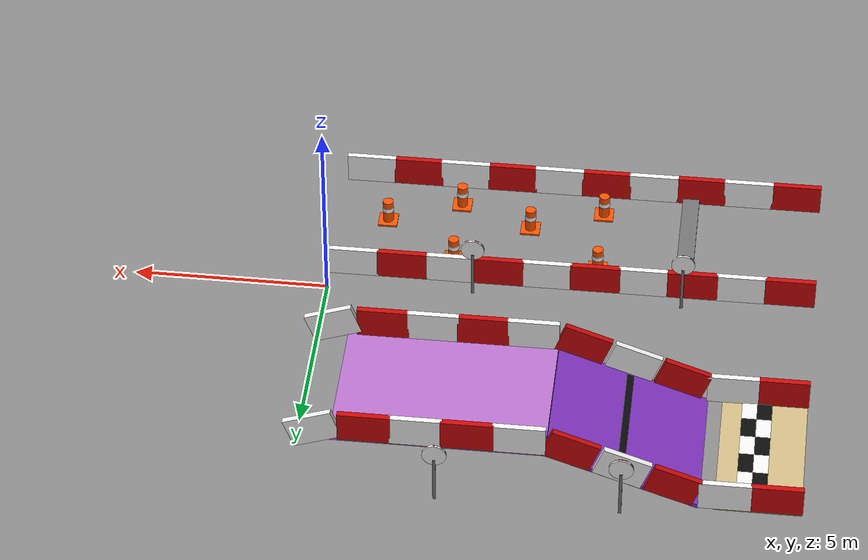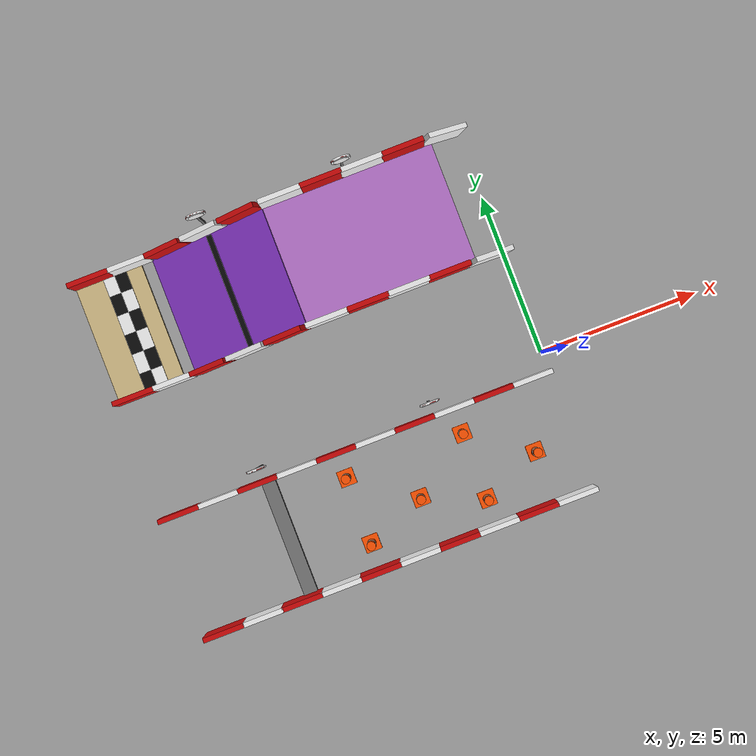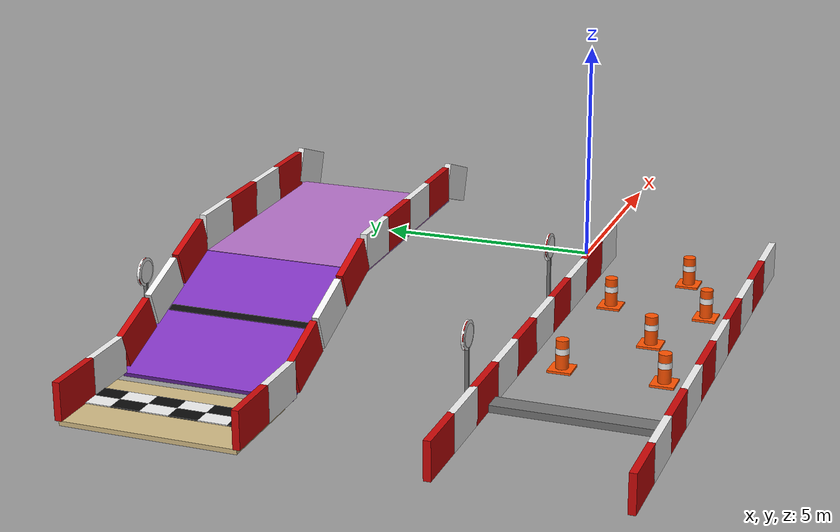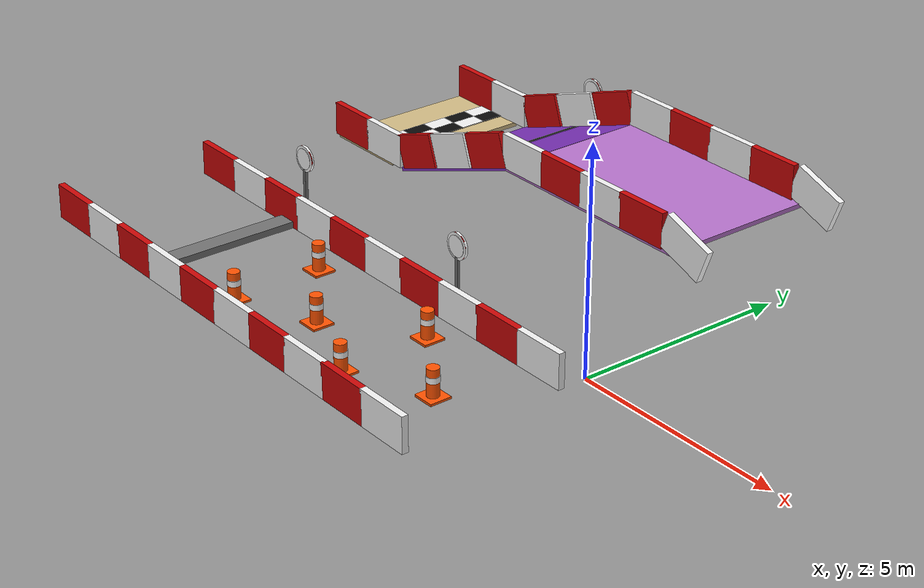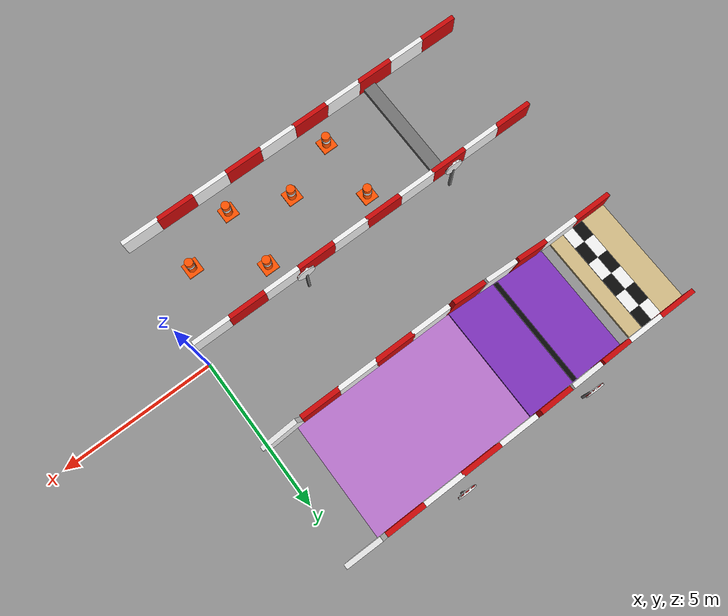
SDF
<sdf version="1.6">
 <world name="evrenos_teknofest_2026">
  <include><uri>model://sun</uri></include>
  <model name="main_course">
   <static>true</static>
   <link name="top_finish_base_0">
    <pose>-11.437500 5.000000 -0.050000 0.000000 0.000000 0.000000</pose>
    <collision name="top_finish_base_0_collision">
     <geometry><box><size>2.125000 3.750000 0.100000</size></box></geometry>
    </collision>
    <visual name="top_finish_base_0_visual">
     <geometry><box><size>2.125000 3.750000 0.100000</size></box></geometry>
     <material><ambient>0.82 0.73 0.52 1</ambient><diffuse>0.82 0.73 0.52 1</diffuse></material>
    </visual>
   </link>
   <link name="shooting_platform">
    <pose>-3.625000 5.000000 1.317200 0.000000 0.000000 0.000000</pose>
    <collision name="shooting_platform_collision">
     <geometry><box><size>5.250000 3.750000 0.100000</size></box></geometry>
    </collision>
    <visual name="shooting_platform_visual">
     <geometry><box><size>5.250000 3.750000 0.100000</size></box></geometry>
     <material><ambient>0.72 0.45 0.8 1</ambient><diffuse>0.72 0.45 0.8 1</diffuse></material>
    </visual>
   </link>
   <link name="steep_down">
    <pose>-8.125000 5.000000 0.633600 0.000000 -0.349605 0.000000</pose>
    <collision name="steep_down_collision">
     <geometry><box><size>3.991398 3.750000 0.100000</size></box></geometry>
    </collision>
    <visual name="steep_down_visual">
     <geometry><box><size>3.991398 3.750000 0.100000</size></box></geometry>
     <material><ambient>0.5 0.2 0.75 1</ambient><diffuse>0.5 0.2 0.75 1</diffuse></material>
    </visual>
   </link>
   <link name="stop_strip_down">
    <pose>-8.062500 5.000000 0.703600 0.000000 -0.349605 0.000000</pose>
    <visual name="stop_strip_down_visual">
     <geometry><box><size>0.181603 3.562500 0.030000</size></box></geometry>
     <material><ambient>0.04 0.04 0.04 1</ambient><diffuse>0.04 0.04 0.04 1</diffuse></material>
    </visual>
   </link>
   <link name="finish_0_0">
    <pose>-11.437500 3.437500 0.011000 0.000000 0.000000 0.000000</pose>
    <visual name="finish_0_0_visual">
     <geometry><box><size>0.375000 0.625000 0.022000</size></box></geometry>
     <material><ambient>0.04 0.04 0.04 1</ambient><diffuse>0.04 0.04 0.04 1</diffuse></material>
    </visual>
   </link>
   <link name="finish_1_0">
    <pose>-11.062500 3.437500 0.011000 0.000000 0.000000 0.000000</pose>
    <visual name="finish_1_0_visual">
     <geometry><box><size>0.375000 0.625000 0.022000</size></box></geometry>
     <material><ambient>0.95 0.95 0.95 1</ambient><diffuse>0.95 0.95 0.95 1</diffuse></material>
    </visual>
   </link>
   <link name="finish_0_1">
    <pose>-11.437500 4.062500 0.011000 0.000000 0.000000 0.000000</pose>
    <visual name="finish_0_1_visual">
     <geometry><box><size>0.375000 0.625000 0.022000</size></box></geometry>
     <material><ambient>0.95 0.95 0.95 1</ambient><diffuse>0.95 0.95 0.95 1</diffuse></material>
    </visual>
   </link>
   <link name="finish_1_1">
    <pose>-11.062500 4.062500 0.011000 0.000000 0.000000 0.000000</pose>
    <visual name="finish_1_1_visual">
     <geometry><box><size>0.375000 0.625000 0.022000</size></box></geometry>
     <material><ambient>0.04 0.04 0.04 1</ambient><diffuse>0.04 0.04 0.04 1</diffuse></material>
    </visual>
   </link>
   <link name="finish_0_2">
    <pose>-11.437500 4.687500 0.011000 0.000000 0.000000 0.000000</pose>
    <visual name="finish_0_2_visual">
     <geometry><box><size>0.375000 0.625000 0.022000</size></box></geometry>
     <material><ambient>0.04 0.04 0.04 1</ambient><diffuse>0.04 0.04 0.04 1</diffuse></material>
    </visual>
   </link>
   <link name="finish_1_2">
    <pose>-11.062500 4.687500 0.011000 0.000000 0.000000 0.000000</pose>
    <visual name="finish_1_2_visual">
     <geometry><box><size>0.375000 0.625000 0.022000</size></box></geometry>
     <material><ambient>0.95 0.95 0.95 1</ambient><diffuse>0.95 0.95 0.95 1</diffuse></material>
    </visual>
   </link>
   <link name="finish_0_3">
    <pose>-11.437500 5.312500 0.011000 0.000000 0.000000 0.000000</pose>
    <visual name="finish_0_3_visual">
     <geometry><box><size>0.375000 0.625000 0.022000</size></box></geometry>
     <material><ambient>0.95 0.95 0.95 1</ambient><diffuse>0.95 0.95 0.95 1</diffuse></material>
    </visual>
   </link>
   <link name="finish_1_3">
    <pose>-11.062500 5.312500 0.011000 0.000000 0.000000 0.000000</pose>
    <visual name="finish_1_3_visual">
     <geometry><box><size>0.375000 0.625000 0.022000</size></box></geometry>
     <material><ambient>0.04 0.04 0.04 1</ambient><diffuse>0.04 0.04 0.04 1</diffuse></material>
    </visual>
   </link>
   <link name="finish_0_4">
    <pose>-11.437500 5.937500 0.011000 0.000000 0.000000 0.000000</pose>
    <visual name="finish_0_4_visual">
     <geometry><box><size>0.375000 0.625000 0.022000</size></box></geometry>
     <material><ambient>0.04 0.04 0.04 1</ambient><diffuse>0.04 0.04 0.04 1</diffuse></material>
    </visual>
   </link>
   <link name="finish_1_4">
    <pose>-11.062500 5.937500 0.011000 0.000000 0.000000 0.000000</pose>
    <visual name="finish_1_4_visual">
     <geometry><box><size>0.375000 0.625000 0.022000</size></box></geometry>
     <material><ambient>0.95 0.95 0.95 1</ambient><diffuse>0.95 0.95 0.95 1</diffuse></material>
    </visual>
   </link>
   <link name="finish_0_5">
    <pose>-11.437500 6.562500 0.011000 0.000000 0.000000 0.000000</pose>
    <visual name="finish_0_5_visual">
     <geometry><box><size>0.375000 0.625000 0.022000</size></box></geometry>
     <material><ambient>0.95 0.95 0.95 1</ambient><diffuse>0.95 0.95 0.95 1</diffuse></material>
    </visual>
   </link>
   <link name="finish_1_5">
    <pose>-11.062500 6.562500 0.011000 0.000000 0.000000 0.000000</pose>
    <visual name="finish_1_5_visual">
     <geometry><box><size>0.375000 0.625000 0.022000</size></box></geometry>
     <material><ambient>0.04 0.04 0.04 1</ambient><diffuse>0.04 0.04 0.04 1</diffuse></material>
    </visual>
   </link>
   <link name="vertical_obstacle">
    <pose>-9.125000 -2.500000 0.075000 0.000000 0.000000 0.000000</pose>
    <collision name="vertical_obstacle_collision">
     <geometry><box><size>0.437500 3.750000 0.150000</size></box></geometry>
    </collision>
    <visual name="vertical_obstacle_visual">
     <geometry><box><size>0.437500 3.750000 0.150000</size></box></geometry>
     <material><ambient>0.45 0.45 0.45 1</ambient><diffuse>0.45 0.45 0.45 1</diffuse></material>
    </visual>
   </link>
   <link name="cone_base_0">
    <pose>-6.875000 -3.562500 0.025000 0.000000 0.000000 0.000000</pose>
    <collision name="cone_base_0_collision">
     <geometry><box><size>0.500000 0.500000 0.050000</size></box></geometry>
    </collision>
    <visual name="cone_base_0_visual">
     <geometry><box><size>0.500000 0.500000 0.050000</size></box></geometry>
     <material><ambient>1.0 0.32 0.0 1</ambient><diffuse>1.0 0.32 0.0 1</diffuse></material>
    </visual>
   </link>
   <link name="cone_orange_0">
    <pose>-6.875000 -3.562500 0.360000 0.000000 0.000000 0.000000</pose>
    <collision name="cone_orange_0_collision">
     <geometry><cylinder><radius>0.137500</radius><length>0.620000</length></cylinder></geometry>
    </collision>
    <visual name="cone_orange_0_visual">
     <geometry><cylinder><radius>0.137500</radius><length>0.620000</length></cylinder></geometry>
     <material><ambient>1.0 0.32 0.0 1</ambient><diffuse>1.0 0.32 0.0 1</diffuse></material>
    </visual>
   </link>
   <link name="cone_white_0">
    <pose>-6.875000 -3.562500 0.430000 0.000000 0.000000 0.000000</pose>
    <collision name="cone_white_0_collision">
     <geometry><cylinder><radius>0.143750</radius><length>0.130000</length></cylinder></geometry>
    </collision>
    <visual name="cone_white_0_visual">
     <geometry><cylinder><radius>0.143750</radius><length>0.130000</length></cylinder></geometry>
     <material><ambient>0.95 0.95 0.95 1</ambient><diffuse>0.95 0.95 0.95 1</diffuse></material>
    </visual>
   </link>
   <link name="cone_base_1">
    <pose>-6.875000 -1.437500 0.025000 0.000000 0.000000 0.000000</pose>
    <collision name="cone_base_1_collision">
     <geometry><box><size>0.500000 0.500000 0.050000</size></box></geometry>
    </collision>
    <visual name="cone_base_1_visual">
     <geometry><box><size>0.500000 0.500000 0.050000</size></box></geometry>
     <material><ambient>1.0 0.32 0.0 1</ambient><diffuse>1.0 0.32 0.0 1</diffuse></material>
    </visual>
   </link>
   <link name="cone_orange_1">
    <pose>-6.875000 -1.437500 0.360000 0.000000 0.000000 0.000000</pose>
    <collision name="cone_orange_1_collision">
     <geometry><cylinder><radius>0.137500</radius><length>0.620000</length></cylinder></geometry>
    </collision>
    <visual name="cone_orange_1_visual">
     <geometry><cylinder><radius>0.137500</radius><length>0.620000</length></cylinder></geometry>
     <material><ambient>1.0 0.32 0.0 1</ambient><diffuse>1.0 0.32 0.0 1</diffuse></material>
    </visual>
   </link>
   <link name="cone_white_1">
    <pose>-6.875000 -1.437500 0.430000 0.000000 0.000000 0.000000</pose>
    <collision name="cone_white_1_collision">
     <geometry><cylinder><radius>0.143750</radius><length>0.130000</length></cylinder></geometry>
    </collision>
    <visual name="cone_white_1_visual">
     <geometry><cylinder><radius>0.143750</radius><length>0.130000</length></cylinder></geometry>
     <material><ambient>0.95 0.95 0.95 1</ambient><diffuse>0.95 0.95 0.95 1</diffuse></material>
    </visual>
   </link>
   <link name="cone_base_2">
    <pose>-5.000000 -2.812500 0.025000 0.000000 0.000000 0.000000</pose>
    <collision name="cone_base_2_collision">
     <geometry><box><size>0.500000 0.500000 0.050000</size></box></geometry>
    </collision>
    <visual name="cone_base_2_visual">
     <geometry><box><size>0.500000 0.500000 0.050000</size></box></geometry>
     <material><ambient>1.0 0.32 0.0 1</ambient><diffuse>1.0 0.32 0.0 1</diffuse></material>
    </visual>
   </link>
   <link name="cone_orange_2">
    <pose>-5.000000 -2.812500 0.360000 0.000000 0.000000 0.000000</pose>
    <collision name="cone_orange_2_collision">
     <geometry><cylinder><radius>0.137500</radius><length>0.620000</length></cylinder></geometry>
    </collision>
    <visual name="cone_orange_2_visual">
     <geometry><cylinder><radius>0.137500</radius><length>0.620000</length></cylinder></geometry>
     <material><ambient>1.0 0.32 0.0 1</ambient><diffuse>1.0 0.32 0.0 1</diffuse></material>
    </visual>
   </link>
   <link name="cone_white_2">
    <pose>-5.000000 -2.812500 0.430000 0.000000 0.000000 0.000000</pose>
    <collision name="cone_white_2_collision">
     <geometry><cylinder><radius>0.143750</radius><length>0.130000</length></cylinder></geometry>
    </collision>
    <visual name="cone_white_2_visual">
     <geometry><cylinder><radius>0.143750</radius><length>0.130000</length></cylinder></geometry>
     <material><ambient>0.95 0.95 0.95 1</ambient><diffuse>0.95 0.95 0.95 1</diffuse></material>
    </visual>
   </link>
   <link name="cone_base_3">
    <pose>-3.125000 -3.562500 0.025000 0.000000 0.000000 0.000000</pose>
    <collision name="cone_base_3_collision">
     <geometry><box><size>0.500000 0.500000 0.050000</size></box></geometry>
    </collision>
    <visual name="cone_base_3_visual">
     <geometry><box><size>0.500000 0.500000 0.050000</size></box></geometry>
     <material><ambient>1.0 0.32 0.0 1</ambient><diffuse>1.0 0.32 0.0 1</diffuse></material>
    </visual>
   </link>
   <link name="cone_orange_3">
    <pose>-3.125000 -3.562500 0.360000 0.000000 0.000000 0.000000</pose>
    <collision name="cone_orange_3_collision">
     <geometry><cylinder><radius>0.137500</radius><length>0.620000</length></cylinder></geometry>
    </collision>
    <visual name="cone_orange_3_visual">
     <geometry><cylinder><radius>0.137500</radius><length>0.620000</length></cylinder></geometry>
     <material><ambient>1.0 0.32 0.0 1</ambient><diffuse>1.0 0.32 0.0 1</diffuse></material>
    </visual>
   </link>
   <link name="cone_white_3">
    <pose>-3.125000 -3.562500 0.430000 0.000000 0.000000 0.000000</pose>
    <collision name="cone_white_3_collision">
     <geometry><cylinder><radius>0.143750</radius><length>0.130000</length></cylinder></geometry>
    </collision>
    <visual name="cone_white_3_visual">
     <geometry><cylinder><radius>0.143750</radius><length>0.130000</length></cylinder></geometry>
     <material><ambient>0.95 0.95 0.95 1</ambient><diffuse>0.95 0.95 0.95 1</diffuse></material>
    </visual>
   </link>
   <link name="cone_base_4">
    <pose>-3.125000 -1.437500 0.025000 0.000000 0.000000 0.000000</pose>
    <collision name="cone_base_4_collision">
     <geometry><box><size>0.500000 0.500000 0.050000</size></box></geometry>
    </collision>
    <visual name="cone_base_4_visual">
     <geometry><box><size>0.500000 0.500000 0.050000</size></box></geometry>
     <material><ambient>1.0 0.32 0.0 1</ambient><diffuse>1.0 0.32 0.0 1</diffuse></material>
    </visual>
   </link>
   <link name="cone_orange_4">
    <pose>-3.125000 -1.437500 0.360000 0.000000 0.000000 0.000000</pose>
    <collision name="cone_orange_4_collision">
     <geometry><cylinder><radius>0.137500</radius><length>0.620000</length></cylinder></geometry>
    </collision>
    <visual name="cone_orange_4_visual">
     <geometry><cylinder><radius>0.137500</radius><length>0.620000</length></cylinder></geometry>
     <material><ambient>1.0 0.32 0.0 1</ambient><diffuse>1.0 0.32 0.0 1</diffuse></material>
    </visual>
   </link>
   <link name="cone_white_4">
    <pose>-3.125000 -1.437500 0.430000 0.000000 0.000000 0.000000</pose>
    <collision name="cone_white_4_collision">
     <geometry><cylinder><radius>0.143750</radius><length>0.130000</length></cylinder></geometry>
    </collision>
    <visual name="cone_white_4_visual">
     <geometry><cylinder><radius>0.143750</radius><length>0.130000</length></cylinder></geometry>
     <material><ambient>0.95 0.95 0.95 1</ambient><diffuse>0.95 0.95 0.95 1</diffuse></material>
    </visual>
   </link>
   <link name="cone_base_5">
    <pose>-1.250000 -2.750000 0.025000 0.000000 0.000000 0.000000</pose>
    <collision name="cone_base_5_collision">
     <geometry><box><size>0.500000 0.500000 0.050000</size></box></geometry>
    </collision>
    <visual name="cone_base_5_visual">
     <geometry><box><size>0.500000 0.500000 0.050000</size></box></geometry>
     <material><ambient>1.0 0.32 0.0 1</ambient><diffuse>1.0 0.32 0.0 1</diffuse></material>
    </visual>
   </link>
   <link name="cone_orange_5">
    <pose>-1.250000 -2.750000 0.360000 0.000000 0.000000 0.000000</pose>
    <collision name="cone_orange_5_collision">
     <geometry><cylinder><radius>0.137500</radius><length>0.620000</length></cylinder></geometry>
    </collision>
    <visual name="cone_orange_5_visual">
     <geometry><cylinder><radius>0.137500</radius><length>0.620000</length></cylinder></geometry>
     <material><ambient>1.0 0.32 0.0 1</ambient><diffuse>1.0 0.32 0.0 1</diffuse></material>
    </visual>
   </link>
   <link name="cone_white_5">
    <pose>-1.250000 -2.750000 0.430000 0.000000 0.000000 0.000000</pose>
    <collision name="cone_white_5_collision">
     <geometry><cylinder><radius>0.143750</radius><length>0.130000</length></cylinder></geometry>
    </collision>
    <visual name="cone_white_5_visual">
     <geometry><cylinder><radius>0.143750</radius><length>0.130000</length></cylinder></geometry>
     <material><ambient>0.95 0.95 0.95 1</ambient><diffuse>0.95 0.95 0.95 1</diffuse></material>
    </visual>
   </link>
   <link name="middle_bar_-1_0">
    <pose>-11.875000 -4.375000 0.400000 0.000000 0.000000 0.000000</pose>
    <collision name="middle_bar_-1_0_collision">
     <geometry><box><size>1.287500 0.150000 0.800000</size></box></geometry>
    </collision>
    <visual name="middle_bar_-1_0_visual">
     <geometry><box><size>1.287500 0.150000 0.800000</size></box></geometry>
     <material><ambient>0.8 0.03 0.03 1</ambient><diffuse>0.8 0.03 0.03 1</diffuse></material>
    </visual>
   </link>
   <link name="middle_bar_-1_1">
    <pose>-10.625000 -4.375000 0.400000 0.000000 0.000000 0.000000</pose>
    <collision name="middle_bar_-1_1_collision">
     <geometry><box><size>1.287500 0.150000 0.800000</size></box></geometry>
    </collision>
    <visual name="middle_bar_-1_1_visual">
     <geometry><box><size>1.287500 0.150000 0.800000</size></box></geometry>
     <material><ambient>0.95 0.95 0.95 1</ambient><diffuse>0.95 0.95 0.95 1</diffuse></material>
    </visual>
   </link>
   <link name="middle_bar_-1_2">
    <pose>-9.375000 -4.375000 0.400000 0.000000 0.000000 0.000000</pose>
    <collision name="middle_bar_-1_2_collision">
     <geometry><box><size>1.287500 0.150000 0.800000</size></box></geometry>
    </collision>
    <visual name="middle_bar_-1_2_visual">
     <geometry><box><size>1.287500 0.150000 0.800000</size></box></geometry>
     <material><ambient>0.8 0.03 0.03 1</ambient><diffuse>0.8 0.03 0.03 1</diffuse></material>
    </visual>
   </link>
   <link name="middle_bar_-1_3">
    <pose>-8.125000 -4.375000 0.400000 0.000000 0.000000 0.000000</pose>
    <collision name="middle_bar_-1_3_collision">
     <geometry><box><size>1.287500 0.150000 0.800000</size></box></geometry>
    </collision>
    <visual name="middle_bar_-1_3_visual">
     <geometry><box><size>1.287500 0.150000 0.800000</size></box></geometry>
     <material><ambient>0.95 0.95 0.95 1</ambient><diffuse>0.95 0.95 0.95 1</diffuse></material>
    </visual>
   </link>
   <link name="middle_bar_-1_4">
    <pose>-6.875000 -4.375000 0.400000 0.000000 0.000000 0.000000</pose>
    <collision name="middle_bar_-1_4_collision">
     <geometry><box><size>1.287500 0.150000 0.800000</size></box></geometry>
    </collision>
    <visual name="middle_bar_-1_4_visual">
     <geometry><box><size>1.287500 0.150000 0.800000</size></box></geometry>
     <material><ambient>0.8 0.03 0.03 1</ambient><diffuse>0.8 0.03 0.03 1</diffuse></material>
    </visual>
   </link>
   <link name="middle_bar_-1_5">
    <pose>-5.625000 -4.375000 0.400000 0.000000 0.000000 0.000000</pose>
    <collision name="middle_bar_-1_5_collision">
     <geometry><box><size>1.287500 0.150000 0.800000</size></box></geometry>
    </collision>
    <visual name="middle_bar_-1_5_visual">
     <geometry><box><size>1.287500 0.150000 0.800000</size></box></geometry>
     <material><ambient>0.95 0.95 0.95 1</ambient><diffuse>0.95 0.95 0.95 1</diffuse></material>
    </visual>
   </link>
   <link name="middle_bar_-1_6">
    <pose>-4.375000 -4.375000 0.400000 0.000000 0.000000 0.000000</pose>
    <collision name="middle_bar_-1_6_collision">
     <geometry><box><size>1.287500 0.150000 0.800000</size></box></geometry>
    </collision>
    <visual name="middle_bar_-1_6_visual">
     <geometry><box><size>1.287500 0.150000 0.800000</size></box></geometry>
     <material><ambient>0.8 0.03 0.03 1</ambient><diffuse>0.8 0.03 0.03 1</diffuse></material>
    </visual>
   </link>
   <link name="middle_bar_-1_7">
    <pose>-3.125000 -4.375000 0.400000 0.000000 0.000000 0.000000</pose>
    <collision name="middle_bar_-1_7_collision">
     <geometry><box><size>1.287500 0.150000 0.800000</size></box></geometry>
    </collision>
    <visual name="middle_bar_-1_7_visual">
     <geometry><box><size>1.287500 0.150000 0.800000</size></box></geometry>
     <material><ambient>0.95 0.95 0.95 1</ambient><diffuse>0.95 0.95 0.95 1</diffuse></material>
    </visual>
   </link>
   <link name="middle_bar_-1_8">
    <pose>-1.875000 -4.375000 0.400000 0.000000 0.000000 0.000000</pose>
    <collision name="middle_bar_-1_8_collision">
     <geometry><box><size>1.287500 0.150000 0.800000</size></box></geometry>
    </collision>
    <visual name="middle_bar_-1_8_visual">
     <geometry><box><size>1.287500 0.150000 0.800000</size></box></geometry>
     <material><ambient>0.8 0.03 0.03 1</ambient><diffuse>0.8 0.03 0.03 1</diffuse></material>
    </visual>
   </link>
   <link name="middle_bar_-1_9">
    <pose>-0.625000 -4.375000 0.400000 0.000000 0.000000 0.000000</pose>
    <collision name="middle_bar_-1_9_collision">
     <geometry><box><size>1.287500 0.150000 0.800000</size></box></geometry>
    </collision>
    <visual name="middle_bar_-1_9_visual">
     <geometry><box><size>1.287500 0.150000 0.800000</size></box></geometry>
     <material><ambient>0.95 0.95 0.95 1</ambient><diffuse>0.95 0.95 0.95 1</diffuse></material>
    </visual>
   </link>
   <link name="middle_bar_1_0">
    <pose>-11.875000 -0.625000 0.400000 0.000000 0.000000 0.000000</pose>
    <collision name="middle_bar_1_0_collision">
     <geometry><box><size>1.287500 0.150000 0.800000</size></box></geometry>
    </collision>
    <visual name="middle_bar_1_0_visual">
     <geometry><box><size>1.287500 0.150000 0.800000</size></box></geometry>
     <material><ambient>0.8 0.03 0.03 1</ambient><diffuse>0.8 0.03 0.03 1</diffuse></material>
    </visual>
   </link>
   <link name="middle_bar_1_1">
    <pose>-10.625000 -0.625000 0.400000 0.000000 0.000000 0.000000</pose>
    <collision name="middle_bar_1_1_collision">
     <geometry><box><size>1.287500 0.150000 0.800000</size></box></geometry>
    </collision>
    <visual name="middle_bar_1_1_visual">
     <geometry><box><size>1.287500 0.150000 0.800000</size></box></geometry>
     <material><ambient>0.95 0.95 0.95 1</ambient><diffuse>0.95 0.95 0.95 1</diffuse></material>
    </visual>
   </link>
   <link name="middle_bar_1_2">
    <pose>-9.375000 -0.625000 0.400000 0.000000 0.000000 0.000000</pose>
    <collision name="middle_bar_1_2_collision">
     <geometry><box><size>1.287500 0.150000 0.800000</size></box></geometry>
    </collision>
    <visual name="middle_bar_1_2_visual">
     <geometry><box><size>1.287500 0.150000 0.800000</size></box></geometry>
     <material><ambient>0.8 0.03 0.03 1</ambient><diffuse>0.8 0.03 0.03 1</diffuse></material>
    </visual>
   </link>
   <link name="middle_bar_1_3">
    <pose>-8.125000 -0.625000 0.400000 0.000000 0.000000 0.000000</pose>
    <collision name="middle_bar_1_3_collision">
     <geometry><box><size>1.287500 0.150000 0.800000</size></box></geometry>
    </collision>
    <visual name="middle_bar_1_3_visual">
     <geometry><box><size>1.287500 0.150000 0.800000</size></box></geometry>
     <material><ambient>0.95 0.95 0.95 1</ambient><diffuse>0.95 0.95 0.95 1</diffuse></material>
    </visual>
   </link>
   <link name="middle_bar_1_4">
    <pose>-6.875000 -0.625000 0.400000 0.000000 0.000000 0.000000</pose>
    <collision name="middle_bar_1_4_collision">
     <geometry><box><size>1.287500 0.150000 0.800000</size></box></geometry>
    </collision>
    <visual name="middle_bar_1_4_visual">
     <geometry><box><size>1.287500 0.150000 0.800000</size></box></geometry>
     <material><ambient>0.8 0.03 0.03 1</ambient><diffuse>0.8 0.03 0.03 1</diffuse></material>
    </visual>
   </link>
   <link name="middle_bar_1_5">
    <pose>-5.625000 -0.625000 0.400000 0.000000 0.000000 0.000000</pose>
    <collision name="middle_bar_1_5_collision">
     <geometry><box><size>1.287500 0.150000 0.800000</size></box></geometry>
    </collision>
    <visual name="middle_bar_1_5_visual">
     <geometry><box><size>1.287500 0.150000 0.800000</size></box></geometry>
     <material><ambient>0.95 0.95 0.95 1</ambient><diffuse>0.95 0.95 0.95 1</diffuse></material>
    </visual>
   </link>
   <link name="middle_bar_1_6">
    <pose>-4.375000 -0.625000 0.400000 0.000000 0.000000 0.000000</pose>
    <collision name="middle_bar_1_6_collision">
     <geometry><box><size>1.287500 0.150000 0.800000</size></box></geometry>
    </collision>
    <visual name="middle_bar_1_6_visual">
     <geometry><box><size>1.287500 0.150000 0.800000</size></box></geometry>
     <material><ambient>0.8 0.03 0.03 1</ambient><diffuse>0.8 0.03 0.03 1</diffuse></material>
    </visual>
   </link>
   <link name="middle_bar_1_7">
    <pose>-3.125000 -0.625000 0.400000 0.000000 0.000000 0.000000</pose>
    <collision name="middle_bar_1_7_collision">
     <geometry><box><size>1.287500 0.150000 0.800000</size></box></geometry>
    </collision>
    <visual name="middle_bar_1_7_visual">
     <geometry><box><size>1.287500 0.150000 0.800000</size></box></geometry>
     <material><ambient>0.95 0.95 0.95 1</ambient><diffuse>0.95 0.95 0.95 1</diffuse></material>
    </visual>
   </link>
   <link name="middle_bar_1_8">
    <pose>-1.875000 -0.625000 0.400000 0.000000 0.000000 0.000000</pose>
    <collision name="middle_bar_1_8_collision">
     <geometry><box><size>1.287500 0.150000 0.800000</size></box></geometry>
    </collision>
    <visual name="middle_bar_1_8_visual">
     <geometry><box><size>1.287500 0.150000 0.800000</size></box></geometry>
     <material><ambient>0.8 0.03 0.03 1</ambient><diffuse>0.8 0.03 0.03 1</diffuse></material>
    </visual>
   </link>
   <link name="middle_bar_1_9">
    <pose>-0.625000 -0.625000 0.400000 0.000000 0.000000 0.000000</pose>
    <collision name="middle_bar_1_9_collision">
     <geometry><box><size>1.287500 0.150000 0.800000</size></box></geometry>
    </collision>
    <visual name="middle_bar_1_9_visual">
     <geometry><box><size>1.287500 0.150000 0.800000</size></box></geometry>
     <material><ambient>0.95 0.95 0.95 1</ambient><diffuse>0.95 0.95 0.95 1</diffuse></material>
    </visual>
   </link>
   <link name="top_bar_-1_0">
    <pose>-11.875000 3.125000 0.400000 0.000000 0.000000 0.000000</pose>
    <collision name="top_bar_-1_0_collision">
     <geometry><box><size>1.287500 0.150000 0.800000</size></box></geometry>
    </collision>
    <visual name="top_bar_-1_0_visual">
     <geometry><box><size>1.287500 0.150000 0.800000</size></box></geometry>
     <material><ambient>0.8 0.03 0.03 1</ambient><diffuse>0.8 0.03 0.03 1</diffuse></material>
    </visual>
   </link>
   <link name="top_bar_-1_1">
    <pose>-10.625000 3.125000 0.400000 0.000000 0.000000 0.000000</pose>
    <collision name="top_bar_-1_1_collision">
     <geometry><box><size>1.287500 0.150000 0.800000</size></box></geometry>
    </collision>
    <visual name="top_bar_-1_1_visual">
     <geometry><box><size>1.287500 0.150000 0.800000</size></box></geometry>
     <material><ambient>0.95 0.95 0.95 1</ambient><diffuse>0.95 0.95 0.95 1</diffuse></material>
    </visual>
   </link>
   <link name="top_bar_-1_2">
    <pose>-9.375000 3.125000 0.627900 0.000000 -0.349605 0.000000</pose>
    <collision name="top_bar_-1_2_collision">
     <geometry><box><size>1.247009 0.150000 0.800000</size></box></geometry>
    </collision>
    <visual name="top_bar_-1_2_visual">
     <geometry><box><size>1.247009 0.150000 0.800000</size></box></geometry>
     <material><ambient>0.8 0.03 0.03 1</ambient><diffuse>0.8 0.03 0.03 1</diffuse></material>
    </visual>
   </link>
   <link name="top_bar_-1_3">
    <pose>-8.125000 3.125000 1.083600 0.000000 -0.349605 0.000000</pose>
    <collision name="top_bar_-1_3_collision">
     <geometry><box><size>1.247009 0.150000 0.800000</size></box></geometry>
    </collision>
    <visual name="top_bar_-1_3_visual">
     <geometry><box><size>1.247009 0.150000 0.800000</size></box></geometry>
     <material><ambient>0.95 0.95 0.95 1</ambient><diffuse>0.95 0.95 0.95 1</diffuse></material>
    </visual>
   </link>
   <link name="top_bar_-1_4">
    <pose>-6.875000 3.125000 1.539300 0.000000 -0.349605 0.000000</pose>
    <collision name="top_bar_-1_4_collision">
     <geometry><box><size>1.247009 0.150000 0.800000</size></box></geometry>
    </collision>
    <visual name="top_bar_-1_4_visual">
     <geometry><box><size>1.247009 0.150000 0.800000</size></box></geometry>
     <material><ambient>0.8 0.03 0.03 1</ambient><diffuse>0.8 0.03 0.03 1</diffuse></material>
    </visual>
   </link>
   <link name="top_bar_-1_5">
    <pose>-5.625000 3.125000 1.767200 0.000000 0.000000 0.000000</pose>
    <collision name="top_bar_-1_5_collision">
     <geometry><box><size>1.287500 0.150000 0.800000</size></box></geometry>
    </collision>
    <visual name="top_bar_-1_5_visual">
     <geometry><box><size>1.287500 0.150000 0.800000</size></box></geometry>
     <material><ambient>0.95 0.95 0.95 1</ambient><diffuse>0.95 0.95 0.95 1</diffuse></material>
    </visual>
   </link>
   <link name="top_bar_-1_6">
    <pose>-4.375000 3.125000 1.767200 0.000000 0.000000 0.000000</pose>
    <collision name="top_bar_-1_6_collision">
     <geometry><box><size>1.287500 0.150000 0.800000</size></box></geometry>
    </collision>
    <visual name="top_bar_-1_6_visual">
     <geometry><box><size>1.287500 0.150000 0.800000</size></box></geometry>
     <material><ambient>0.8 0.03 0.03 1</ambient><diffuse>0.8 0.03 0.03 1</diffuse></material>
    </visual>
   </link>
   <link name="top_bar_-1_7">
    <pose>-3.125000 3.125000 1.767200 0.000000 0.000000 0.000000</pose>
    <collision name="top_bar_-1_7_collision">
     <geometry><box><size>1.287500 0.150000 0.800000</size></box></geometry>
    </collision>
    <visual name="top_bar_-1_7_visual">
     <geometry><box><size>1.287500 0.150000 0.800000</size></box></geometry>
     <material><ambient>0.95 0.95 0.95 1</ambient><diffuse>0.95 0.95 0.95 1</diffuse></material>
    </visual>
   </link>
   <link name="top_bar_-1_8">
    <pose>-1.875000 3.125000 1.767200 0.000000 0.000000 0.000000</pose>
    <collision name="top_bar_-1_8_collision">
     <geometry><box><size>1.287500 0.150000 0.800000</size></box></geometry>
    </collision>
    <visual name="top_bar_-1_8_visual">
     <geometry><box><size>1.287500 0.150000 0.800000</size></box></geometry>
     <material><ambient>0.8 0.03 0.03 1</ambient><diffuse>0.8 0.03 0.03 1</diffuse></material>
    </visual>
   </link>
   <link name="top_bar_-1_9">
    <pose>-0.625000 3.125000 1.630500 0.000000 0.349605 0.000000</pose>
    <collision name="top_bar_-1_9_collision">
     <geometry><box><size>1.247009 0.150000 0.800000</size></box></geometry>
    </collision>
    <visual name="top_bar_-1_9_visual">
     <geometry><box><size>1.247009 0.150000 0.800000</size></box></geometry>
     <material><ambient>0.95 0.95 0.95 1</ambient><diffuse>0.95 0.95 0.95 1</diffuse></material>
    </visual>
   </link>
   <link name="top_bar_1_0">
    <pose>-11.875000 6.875000 0.400000 0.000000 0.000000 0.000000</pose>
    <collision name="top_bar_1_0_collision">
     <geometry><box><size>1.287500 0.150000 0.800000</size></box></geometry>
    </collision>
    <visual name="top_bar_1_0_visual">
     <geometry><box><size>1.287500 0.150000 0.800000</size></box></geometry>
     <material><ambient>0.8 0.03 0.03 1</ambient><diffuse>0.8 0.03 0.03 1</diffuse></material>
    </visual>
   </link>
   <link name="top_bar_1_1">
    <pose>-10.625000 6.875000 0.400000 0.000000 0.000000 0.000000</pose>
    <collision name="top_bar_1_1_collision">
     <geometry><box><size>1.287500 0.150000 0.800000</size></box></geometry>
    </collision>
    <visual name="top_bar_1_1_visual">
     <geometry><box><size>1.287500 0.150000 0.800000</size></box></geometry>
     <material><ambient>0.95 0.95 0.95 1</ambient><diffuse>0.95 0.95 0.95 1</diffuse></material>
    </visual>
   </link>
   <link name="top_bar_1_2">
    <pose>-9.375000 6.875000 0.627900 0.000000 -0.349605 0.000000</pose>
    <collision name="top_bar_1_2_collision">
     <geometry><box><size>1.247009 0.150000 0.800000</size></box></geometry>
    </collision>
    <visual name="top_bar_1_2_visual">
     <geometry><box><size>1.247009 0.150000 0.800000</size></box></geometry>
     <material><ambient>0.8 0.03 0.03 1</ambient><diffuse>0.8 0.03 0.03 1</diffuse></material>
    </visual>
   </link>
   <link name="top_bar_1_3">
    <pose>-8.125000 6.875000 1.083600 0.000000 -0.349605 0.000000</pose>
    <collision name="top_bar_1_3_collision">
     <geometry><box><size>1.247009 0.150000 0.800000</size></box></geometry>
    </collision>
    <visual name="top_bar_1_3_visual">
     <geometry><box><size>1.247009 0.150000 0.800000</size></box></geometry>
     <material><ambient>0.95 0.95 0.95 1</ambient><diffuse>0.95 0.95 0.95 1</diffuse></material>
    </visual>
   </link>
   <link name="top_bar_1_4">
    <pose>-6.875000 6.875000 1.539300 0.000000 -0.349605 0.000000</pose>
    <collision name="top_bar_1_4_collision">
     <geometry><box><size>1.247009 0.150000 0.800000</size></box></geometry>
    </collision>
    <visual name="top_bar_1_4_visual">
     <geometry><box><size>1.247009 0.150000 0.800000</size></box></geometry>
     <material><ambient>0.8 0.03 0.03 1</ambient><diffuse>0.8 0.03 0.03 1</diffuse></material>
    </visual>
   </link>
   <link name="top_bar_1_5">
    <pose>-5.625000 6.875000 1.767200 0.000000 0.000000 0.000000</pose>
    <collision name="top_bar_1_5_collision">
     <geometry><box><size>1.287500 0.150000 0.800000</size></box></geometry>
    </collision>
    <visual name="top_bar_1_5_visual">
     <geometry><box><size>1.287500 0.150000 0.800000</size></box></geometry>
     <material><ambient>0.95 0.95 0.95 1</ambient><diffuse>0.95 0.95 0.95 1</diffuse></material>
    </visual>
   </link>
   <link name="top_bar_1_6">
    <pose>-4.375000 6.875000 1.767200 0.000000 0.000000 0.000000</pose>
    <collision name="top_bar_1_6_collision">
     <geometry><box><size>1.287500 0.150000 0.800000</size></box></geometry>
    </collision>
    <visual name="top_bar_1_6_visual">
     <geometry><box><size>1.287500 0.150000 0.800000</size></box></geometry>
     <material><ambient>0.8 0.03 0.03 1</ambient><diffuse>0.8 0.03 0.03 1</diffuse></material>
    </visual>
   </link>
   <link name="top_bar_1_7">
    <pose>-3.125000 6.875000 1.767200 0.000000 0.000000 0.000000</pose>
    <collision name="top_bar_1_7_collision">
     <geometry><box><size>1.287500 0.150000 0.800000</size></box></geometry>
    </collision>
    <visual name="top_bar_1_7_visual">
     <geometry><box><size>1.287500 0.150000 0.800000</size></box></geometry>
     <material><ambient>0.95 0.95 0.95 1</ambient><diffuse>0.95 0.95 0.95 1</diffuse></material>
    </visual>
   </link>
   <link name="top_bar_1_8">
    <pose>-1.875000 6.875000 1.767200 0.000000 0.000000 0.000000</pose>
    <collision name="top_bar_1_8_collision">
     <geometry><box><size>1.287500 0.150000 0.800000</size></box></geometry>
    </collision>
    <visual name="top_bar_1_8_visual">
     <geometry><box><size>1.287500 0.150000 0.800000</size></box></geometry>
     <material><ambient>0.8 0.03 0.03 1</ambient><diffuse>0.8 0.03 0.03 1</diffuse></material>
    </visual>
   </link>
   <link name="top_bar_1_9">
    <pose>-0.625000 6.875000 1.630500 0.000000 0.349605 0.000000</pose>
    <collision name="top_bar_1_9_collision">
     <geometry><box><size>1.247009 0.150000 0.800000</size></box></geometry>
    </collision>
    <visual name="top_bar_1_9_visual">
     <geometry><box><size>1.247009 0.150000 0.800000</size></box></geometry>
     <material><ambient>0.95 0.95 0.95 1</ambient><diffuse>0.95 0.95 0.95 1</diffuse></material>
    </visual>
   </link>
   <link name="stage4_post">
    <pose>-9.125000 -0.187500 0.650000 0.000000 0.000000 0.000000</pose>
    <collision name="stage4_post_collision">
     <geometry><box><size>0.075000 0.075000 1.300000</size></box></geometry>
    </collision>
    <visual name="stage4_post_visual">
     <geometry><box><size>0.075000 0.075000 1.300000</size></box></geometry>
     <material><ambient>0.45 0.45 0.45 1</ambient><diffuse>0.45 0.45 0.45 1</diffuse></material>
    </visual>
   </link>
   <link name="stage4_disc">
    <pose>-9.125000 -0.187500 1.450000 1.570796 0.000000 0.000000</pose>
    <visual name="stage4_disc_visual">
     <geometry><cylinder><radius>0.300000</radius><length>0.062500</length></cylinder></geometry>
     <material><ambient>0.95 0.95 0.95 1</ambient><diffuse>0.95 0.95 0.95 1</diffuse></material>
    </visual>
   </link>
   <link name="stage4_redring">
    <pose>-9.125000 -0.202500 1.450000 1.570796 0.000000 0.000000</pose>
    <visual name="stage4_redring_visual">
     <geometry><cylinder><radius>0.300000</radius><length>0.022500</length></cylinder></geometry>
     <material><ambient>0.8 0.03 0.03 1</ambient><diffuse>0.8 0.03 0.03 1</diffuse></material>
    </visual>
   </link>
   <link name="stage4_inner">
    <pose>-9.125000 -0.217500 1.450000 1.570796 0.000000 0.000000</pose>
    <visual name="stage4_inner_visual">
     <geometry><cylinder><radius>0.240000</radius><length>0.025000</length></cylinder></geometry>
     <material><ambient>0.95 0.95 0.95 1</ambient><diffuse>0.95 0.95 0.95 1</diffuse></material>
    </visual>
   </link>
   <link name="stage5_post">
    <pose>-3.750000 -0.187500 0.650000 0.000000 0.000000 0.000000</pose>
    <collision name="stage5_post_collision">
     <geometry><box><size>0.075000 0.075000 1.300000</size></box></geometry>
    </collision>
    <visual name="stage5_post_visual">
     <geometry><box><size>0.075000 0.075000 1.300000</size></box></geometry>
     <material><ambient>0.45 0.45 0.45 1</ambient><diffuse>0.45 0.45 0.45 1</diffuse></material>
    </visual>
   </link>
   <link name="stage5_disc">
    <pose>-3.750000 -0.187500 1.450000 1.570796 0.000000 0.000000</pose>
    <visual name="stage5_disc_visual">
     <geometry><cylinder><radius>0.300000</radius><length>0.062500</length></cylinder></geometry>
     <material><ambient>0.95 0.95 0.95 1</ambient><diffuse>0.95 0.95 0.95 1</diffuse></material>
    </visual>
   </link>
   <link name="stage5_redring">
    <pose>-3.750000 -0.202500 1.450000 1.570796 0.000000 0.000000</pose>
    <visual name="stage5_redring_visual">
     <geometry><cylinder><radius>0.300000</radius><length>0.022500</length></cylinder></geometry>
     <material><ambient>0.8 0.03 0.03 1</ambient><diffuse>0.8 0.03 0.03 1</diffuse></material>
    </visual>
   </link>
   <link name="stage5_inner">
    <pose>-3.750000 -0.217500 1.450000 1.570796 0.000000 0.000000</pose>
    <visual name="stage5_inner_visual">
     <geometry><cylinder><radius>0.240000</radius><length>0.025000</length></cylinder></geometry>
     <material><ambient>0.95 0.95 0.95 1</ambient><diffuse>0.95 0.95 0.95 1</diffuse></material>
    </visual>
   </link>
   <link name="stage9_post">
    <pose>-3.625000 7.312500 0.650000 0.000000 0.000000 0.000000</pose>
    <collision name="stage9_post_collision">
     <geometry><box><size>0.075000 0.075000 1.300000</size></box></geometry>
    </collision>
    <visual name="stage9_post_visual">
     <geometry><box><size>0.075000 0.075000 1.300000</size></box></geometry>
     <material><ambient>0.45 0.45 0.45 1</ambient><diffuse>0.45 0.45 0.45 1</diffuse></material>
    </visual>
   </link>
   <link name="stage9_disc">
    <pose>-3.625000 7.312500 1.450000 1.570796 0.000000 0.000000</pose>
    <visual name="stage9_disc_visual">
     <geometry><cylinder><radius>0.300000</radius><length>0.062500</length></cylinder></geometry>
     <material><ambient>0.95 0.95 0.95 1</ambient><diffuse>0.95 0.95 0.95 1</diffuse></material>
    </visual>
   </link>
   <link name="stage9_redring">
    <pose>-3.625000 7.297500 1.450000 1.570796 0.000000 0.000000</pose>
    <visual name="stage9_redring_visual">
     <geometry><cylinder><radius>0.300000</radius><length>0.022500</length></cylinder></geometry>
     <material><ambient>0.8 0.03 0.03 1</ambient><diffuse>0.8 0.03 0.03 1</diffuse></material>
    </visual>
   </link>
   <link name="stage9_inner">
    <pose>-3.625000 7.282500 1.450000 1.570796 0.000000 0.000000</pose>
    <visual name="stage9_inner_visual">
     <geometry><cylinder><radius>0.240000</radius><length>0.025000</length></cylinder></geometry>
     <material><ambient>0.95 0.95 0.95 1</ambient><diffuse>0.95 0.95 0.95 1</diffuse></material>
    </visual>
   </link>
   <link name="stage10_post">
    <pose>-8.125000 7.312500 0.650000 0.000000 0.000000 0.000000</pose>
    <collision name="stage10_post_collision">
     <geometry><box><size>0.075000 0.075000 1.300000</size></box></geometry>
    </collision>
    <visual name="stage10_post_visual">
     <geometry><box><size>0.075000 0.075000 1.300000</size></box></geometry>
     <material><ambient>0.45 0.45 0.45 1</ambient><diffuse>0.45 0.45 0.45 1</diffuse></material>
    </visual>
   </link>
   <link name="stage10_disc">
    <pose>-8.125000 7.312500 1.450000 1.570796 0.000000 0.000000</pose>
    <visual name="stage10_disc_visual">
     <geometry><cylinder><radius>0.300000</radius><length>0.062500</length></cylinder></geometry>
     <material><ambient>0.95 0.95 0.95 1</ambient><diffuse>0.95 0.95 0.95 1</diffuse></material>
    </visual>
   </link>
   <link name="stage10_redring">
    <pose>-8.125000 7.297500 1.450000 1.570796 0.000000 0.000000</pose>
    <visual name="stage10_redring_visual">
     <geometry><cylinder><radius>0.300000</radius><length>0.022500</length></cylinder></geometry>
     <material><ambient>0.8 0.03 0.03 1</ambient><diffuse>0.8 0.03 0.03 1</diffuse></material>
    </visual>
   </link>
   <link name="stage10_inner">
    <pose>-8.125000 7.282500 1.450000 1.570796 0.000000 0.000000</pose>
    <visual name="stage10_inner_visual">
     <geometry><cylinder><radius>0.240000</radius><length>0.025000</length></cylinder></geometry>
     <material><ambient>0.95 0.95 0.95 1</ambient><diffuse>0.95 0.95 0.95 1</diffuse></material>
    </visual>
   </link>
  </model>
 </world>
</sdf>
